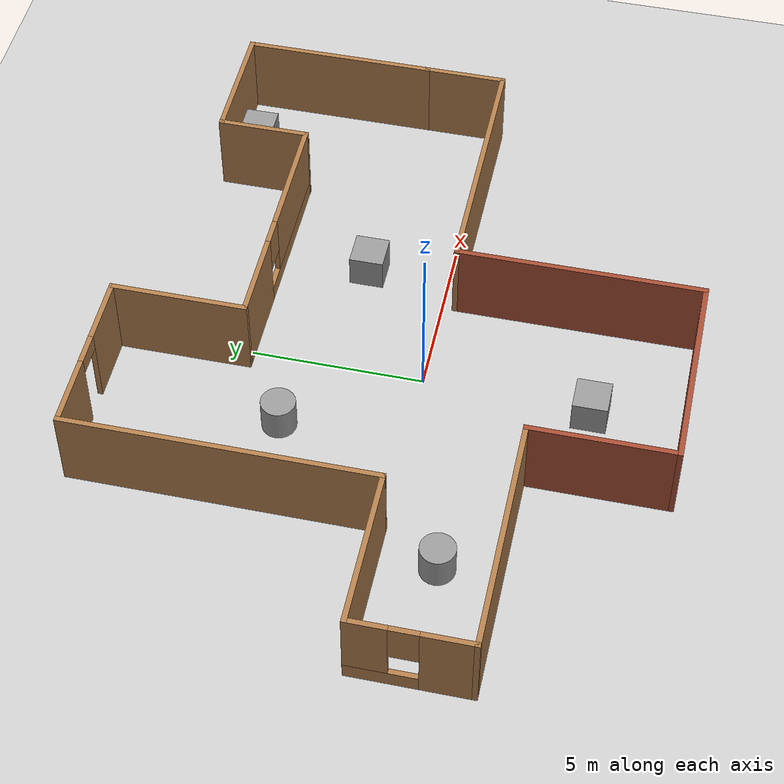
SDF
<sdf version="1.7">
 <world name="default">
  <light name="sun" type="directional">
   <pose>0 0 10 0 -0 0</pose>
   <diffuse>0.8 0.8 0.8 1</diffuse>
   <specular>0.2 0.2 0.2 1</specular>
   <attenuation>
    <range>1000</range>
    <constant>0.9</constant>
    <linear>0.01</linear>
    <quadratic>0.001</quadratic>
   </attenuation>
   <direction>-0.5 0.1 -0.9</direction>
   <spot><inner_angle>0</inner_angle><outer_angle>0</outer_angle><falloff>0</falloff></spot>
  </light>
  <model name="ground_plane">
   <static>1</static>
   <link name="link">
    <collision name="collision">
     <geometry><plane><normal>0 0 1</normal><size>100 100</size></plane></geometry>
     <surface><friction><ode><mu>100</mu><mu2>50</mu2></ode></friction></surface>
    </collision>
    <visual name="visual">
     <cast_shadows>0</cast_shadows>
     <geometry><plane><normal>0 0 1</normal><size>100 100</size></plane></geometry>
     <material>
      <script><uri>file://media/materials/scripts/gazebo.material</uri><name>Gazebo/Grey</name></script>
     </material>
    </visual>
   </link>
  </model>
  <gravity>0 0 -9.8</gravity>
  <magnetic_field>6e-06 2.3e-05 -4.2e-05</magnetic_field>
  <atmosphere type="adiabatic"/>
  <physics type="ode">
   <max_step_size>0.001</max_step_size>
   <real_time_factor>1</real_time_factor>
   <real_time_update_rate>1000</real_time_update_rate>
  </physics>
  <scene><ambient>0.4 0.4 0.4 1</ambient><background>0.7 0.7 0.7 1</background><shadows>1</shadows></scene>
  <audio><device>default</device></audio>
  <spherical_coordinates>
   <surface_model>EARTH_WGS84</surface_model>
   <latitude_deg>0</latitude_deg>
   <longitude_deg>0</longitude_deg>
   <elevation>0</elevation>
   <heading_deg>0</heading_deg>
  </spherical_coordinates>
  <model name="world">
   <pose>0.23497 0.698898 0 0 -0 0</pose>
   <link name="Wall_10">
    <collision name="Wall_10_Collision">
     <geometry><box><size>2.75 0.15 2.5</size></box></geometry>
     <pose>0 0 1.25 0 -0 0</pose>
    </collision>
    <visual name="Wall_10_Visual">
     <pose>0 0 1.25 0 -0 0</pose>
     <geometry><box><size>2.75 0.15 2.5</size></box></geometry>
     <material>
      <script><uri>file://media/materials/scripts/gazebo.material</uri><name>Gazebo/Wood</name></script>
      <ambient>1 1 1 1</ambient>
     </material>
     <meta><layer>0</layer></meta>
    </visual>
    <pose>6.425 5.6 0 0 -0 1.5708</pose>
   </link>
   <link name="Wall_11">
    <collision name="Wall_11_Collision">
     <geometry><box><size>3.75 0.15 2.5</size></box></geometry>
     <pose>0 0 1.25 0 -0 0</pose>
    </collision>
    <visual name="Wall_11_Visual">
     <pose>0 0 1.25 0 -0 0</pose>
     <geometry><box><size>3.75 0.15 2.5</size></box></geometry>
     <material>
      <script><uri>file://media/materials/scripts/gazebo.material</uri><name>Gazebo/Wood</name></script>
      <ambient>1 1 1 1</ambient>
     </material>
     <meta><layer>0</layer></meta>
    </visual>
    <pose>8.225 6.9 0 0 -0 0</pose>
   </link>
   <link name="Wall_12">
    <collision name="Wall_12_Collision">
     <geometry><box><size>5.75 0.15 2.5</size></box></geometry>
     <pose>0 0 1.25 0 -0 0</pose>
    </collision>
    <visual name="Wall_12_Visual">
     <pose>0 0 1.25 0 -0 0</pose>
     <geometry><box><size>5.75 0.15 2.5</size></box></geometry>
     <material>
      <script><uri>file://media/materials/scripts/gazebo.material</uri><name>Gazebo/Wood</name></script>
      <ambient>1 1 1 1</ambient>
     </material>
     <meta><layer>0</layer></meta>
    </visual>
    <pose>10.025 4.1 0 0 -0 -1.5708</pose>
   </link>
   <link name="Wall_13">
    <collision name="Wall_13_Collision">
     <geometry><box><size>2.5 0.15 2.5</size></box></geometry>
     <pose>0 0 1.25 0 -0 0</pose>
    </collision>
    <visual name="Wall_13_Visual">
     <pose>0 0 1.25 0 -0 0</pose>
     <geometry><box><size>2.5 0.15 2.5</size></box></geometry>
     <material>
      <script><uri>file://media/materials/scripts/gazebo.material</uri><name>Gazebo/Wood</name></script>
      <ambient>1 1 1 1</ambient>
     </material>
     <meta><layer>0</layer></meta>
    </visual>
    <pose>10.025 0.125 0 0 -0 -1.5708</pose>
   </link>
   <link name="Wall_14">
    <collision name="Wall_14_Collision">
     <geometry><box><size>7.5 0.15 2.5</size></box></geometry>
     <pose>0 0 1.25 0 -0 0</pose>
    </collision>
    <visual name="Wall_14_Visual">
     <pose>0 0 1.25 0 -0 0</pose>
     <geometry><box><size>7.5 0.15 2.5</size></box></geometry>
     <material>
      <script><uri>file://media/materials/scripts/gazebo.material</uri><name>Gazebo/Wood</name></script>
      <ambient>1 1 1 1</ambient>
     </material>
     <meta><layer>0</layer></meta>
    </visual>
    <pose>6.35 -1.05 0 0 -0 3.14159</pose>
   </link>
   <link name="Wall_15">
    <collision name="Wall_15_Collision">
     <geometry><box><size>7.25 0.15 2.5</size></box></geometry>
     <pose>0 0 1.25 0 -0 0</pose>
    </collision>
    <visual name="Wall_15_Visual">
     <pose>0 0 1.25 0 -0 0</pose>
     <geometry><box><size>7.25 0.15 2.5</size></box></geometry>
     <material>
      <script><uri>file://media/materials/scripts/gazebo.material</uri><name>Gazebo/Bricks</name></script>
      <ambient>1 1 1 1</ambient>
     </material>
     <meta><layer>0</layer></meta>
    </visual>
    <pose>2.675 -4.6 0 0 -0 -1.5708</pose>
   </link>
   <link name="Wall_16">
    <collision name="Wall_16_Collision">
     <geometry><box><size>6 0.15 2.5</size></box></geometry>
     <pose>0 0 1.25 0 -0 0</pose>
    </collision>
    <visual name="Wall_16_Visual">
     <pose>0 0 1.25 0 -0 0</pose>
     <geometry><box><size>6 0.15 2.5</size></box></geometry>
     <material>
      <script><uri>file://media/materials/scripts/gazebo.material</uri><name>Gazebo/Bricks</name></script>
      <ambient>1 1 1 1</ambient>
     </material>
     <meta><layer>0</layer></meta>
    </visual>
    <pose>-0.250001 -8.15 0 0 -0 3.14159</pose>
   </link>
   <link name="Wall_17">
    <collision name="Wall_17_Collision">
     <geometry><box><size>4.25 0.15 2.5</size></box></geometry>
     <pose>0 0 1.25 0 -0 0</pose>
    </collision>
    <visual name="Wall_17_Visual">
     <pose>0 0 1.25 0 -0 0</pose>
     <geometry><box><size>4.25 0.15 2.5</size></box></geometry>
     <material>
      <script><uri>file://media/materials/scripts/gazebo.material</uri><name>Gazebo/Bricks</name></script>
      <ambient>1 1 1 1</ambient>
     </material>
     <meta><layer>0</layer></meta>
    </visual>
    <pose>-3.175 -6.1 0 0 -0 1.5708</pose>
   </link>
   <link name="Wall_18">
    <collision name="Wall_18_Collision">
     <geometry><box><size>7 0.15 2.5</size></box></geometry>
     <pose>0 0 1.25 0 -0 0</pose>
    </collision>
    <visual name="Wall_18_Visual">
     <pose>0 0 1.25 0 -0 0</pose>
     <geometry><box><size>7 0.15 2.5</size></box></geometry>
     <material>
      <script><uri>file://media/materials/scripts/gazebo.material</uri><name>Gazebo/Wood</name></script>
      <ambient>1 1 1 1</ambient>
     </material>
     <meta><layer>0</layer></meta>
    </visual>
    <pose>-6.6 -4.05 0 0 -0 3.14159</pose>
   </link>
   <link name="Wall_19">
    <pose>-10.025 -2.375 0 0 -0 1.5708</pose>
    <visual name="Wall_19_Visual_0">
     <pose>-0.991171 0 1.25 0 -0 0</pose>
     <geometry><box><size>1.51766 0.15 2.5</size></box></geometry>
     <material>
      <script><uri>file://media/materials/scripts/gazebo.material</uri><name>Gazebo/Wood</name></script>
      <ambient>1 1 1 1</ambient>
     </material>
     <meta><layer>0</layer></meta>
    </visual>
    <collision name="Wall_19_Collision_0">
     <geometry><box><size>1.51766 0.15 2.5</size></box></geometry>
     <pose>-0.991171 0 1.25 0 -0 0</pose>
    </collision>
    <visual name="Wall_19_Visual_1">
     <pose>0.758829 0 0.25 0 -0 0</pose>
     <geometry><box><size>1.98234 0.15 0.5</size></box></geometry>
     <material>
      <script><uri>file://media/materials/scripts/gazebo.material</uri><name>Gazebo/Wood</name></script>
      <ambient>1 1 1 1</ambient>
     </material>
     <meta><layer>0</layer></meta>
    </visual>
    <collision name="Wall_19_Collision_1">
     <geometry><box><size>1.98234 0.15 0.5</size></box></geometry>
     <pose>0.758829 0 0.25 0 -0 0</pose>
    </collision>
    <visual name="Wall_19_Visual_2">
     <pose>1.15883 0 1.5 0 -0 0</pose>
     <geometry><box><size>1.18234 0.15 2</size></box></geometry>
     <material>
      <script><uri>file://media/materials/scripts/gazebo.material</uri><name>Gazebo/Wood</name></script>
      <ambient>1 1 1 1</ambient>
     </material>
     <meta><layer>0</layer></meta>
    </visual>
    <collision name="Wall_19_Collision_2">
     <geometry><box><size>1.18234 0.15 2</size></box></geometry>
     <pose>1.15883 0 1.5 0 -0 0</pose>
    </collision>
    <visual name="Wall_19_Visual_3">
     <pose>0.167659 0 1.9 0 -0 0</pose>
     <geometry><box><size>0.8 0.15 1.2</size></box></geometry>
     <material>
      <script><uri>file://media/materials/scripts/gazebo.material</uri><name>Gazebo/Wood</name></script>
      <ambient>1 1 1 1</ambient>
     </material>
     <meta><layer>0</layer></meta>
    </visual>
    <collision name="Wall_19_Collision_3">
     <geometry><box><size>0.8 0.15 1.2</size></box></geometry>
     <pose>0.167659 0 1.9 0 -0 0</pose>
    </collision>
   </link>
   <link name="Wall_20">
    <collision name="Wall_20_Collision">
     <geometry><box><size>4.65 0.15 2.5</size></box></geometry>
     <pose>0 0 1.25 0 -0 0</pose>
    </collision>
    <visual name="Wall_20_Visual">
     <pose>0 0 1.25 0 -0 0</pose>
     <geometry><box><size>4.65 0.15 2.5</size></box></geometry>
     <material>
      <script><uri>file://media/materials/scripts/gazebo.material</uri><name>Gazebo/Wood</name></script>
      <ambient>1 1 1 1</ambient>
     </material>
     <meta><layer>0</layer></meta>
    </visual>
    <pose>-7.775 -0.7 0 0 -0 0</pose>
   </link>
   <link name="Wall_6">
    <collision name="Wall_6_Collision">
     <geometry><box><size>9 0.15 2.5</size></box></geometry>
     <pose>0 0 1.25 0 -0 0</pose>
    </collision>
    <visual name="Wall_6_Visual">
     <pose>0 0 1.25 0 -0 0</pose>
     <geometry><box><size>9 0.15 2.5</size></box></geometry>
     <material>
      <script><uri>file://media/materials/scripts/gazebo.material</uri><name>Gazebo/Wood</name></script>
      <ambient>1 1 1 1</ambient>
     </material>
     <meta><layer>0</layer></meta>
    </visual>
    <pose>-5.525 3.725 0 0 -0 1.5708</pose>
   </link>
   <link name="Wall_7">
    <pose>-3.1 8.15 0 0 -0 0</pose>
    <visual name="Wall_7_Visual_0">
     <pose>-1.44697 0 1.25 0 -0 0</pose>
     <geometry><box><size>2.10606 0.15 2.5</size></box></geometry>
     <material>
      <script><uri>file://media/materials/scripts/gazebo.material</uri><name>Gazebo/Wood</name></script>
      <ambient>1 1 1 1</ambient>
     </material>
     <meta><layer>0</layer></meta>
    </visual>
    <collision name="Wall_7_Collision_0">
     <geometry><box><size>2.10606 0.15 2.5</size></box></geometry>
     <pose>-1.44697 0 1.25 0 -0 0</pose>
    </collision>
    <visual name="Wall_7_Visual_1">
     <pose>1.50303 0 1.25 0 -0 0</pose>
     <geometry><box><size>1.99394 0.15 2.5</size></box></geometry>
     <material>
      <script><uri>file://media/materials/scripts/gazebo.material</uri><name>Gazebo/Wood</name></script>
      <ambient>1 1 1 1</ambient>
     </material>
     <meta><layer>0</layer></meta>
    </visual>
    <collision name="Wall_7_Collision_1">
     <geometry><box><size>1.99394 0.15 2.5</size></box></geometry>
     <pose>1.50303 0 1.25 0 -0 0</pose>
    </collision>
    <visual name="Wall_7_Visual_2">
     <pose>0.056064 0 2.25 0 -0 0</pose>
     <geometry><box><size>0.9 0.15 0.5</size></box></geometry>
     <material>
      <script><uri>file://media/materials/scripts/gazebo.material</uri><name>Gazebo/Wood</name></script>
      <ambient>1 1 1 1</ambient>
     </material>
     <meta><layer>0</layer></meta>
    </visual>
    <collision name="Wall_7_Collision_2">
     <geometry><box><size>0.9 0.15 0.5</size></box></geometry>
     <pose>0.056064 0 2.25 0 -0 0</pose>
    </collision>
   </link>
   <link name="Wall_8">
    <collision name="Wall_8_Collision">
     <geometry><box><size>4 0.15 2.5</size></box></geometry>
     <pose>0 0 1.25 0 -0 0</pose>
    </collision>
    <visual name="Wall_8_Visual">
     <pose>0 0 1.25 0 -0 0</pose>
     <geometry><box><size>4 0.15 2.5</size></box></geometry>
     <material>
      <script><uri>file://media/materials/scripts/gazebo.material</uri><name>Gazebo/Wood</name></script>
      <ambient>1 1 1 1</ambient>
     </material>
     <meta><layer>0</layer></meta>
    </visual>
    <pose>-0.675001 6.225 0 0 -0 -1.5708</pose>
   </link>
   <link name="Wall_9">
    <pose>2.875 4.3 0 0 -0 0</pose>
    <visual name="Wall_9_Visual_0">
     <pose>-2.29684 0 1.25 0 -0 0</pose>
     <geometry><box><size>2.65632 0.15 2.5</size></box></geometry>
     <material>
      <script><uri>file://media/materials/scripts/gazebo.material</uri><name>Gazebo/Wood</name></script>
      <ambient>1 1 1 1</ambient>
     </material>
     <meta><layer>0</layer></meta>
    </visual>
    <collision name="Wall_9_Collision_0">
     <geometry><box><size>2.65632 0.15 2.5</size></box></geometry>
     <pose>-2.29684 0 1.25 0 -0 0</pose>
    </collision>
    <visual name="Wall_9_Visual_1">
     <pose>1.32816 0 0.25 0 -0 0</pose>
     <geometry><box><size>4.59368 0.15 0.5</size></box></geometry>
     <material>
      <script><uri>file://media/materials/scripts/gazebo.material</uri><name>Gazebo/Wood</name></script>
      <ambient>1 1 1 1</ambient>
     </material>
     <meta><layer>0</layer></meta>
    </visual>
    <collision name="Wall_9_Collision_1">
     <geometry><box><size>4.59368 0.15 0.5</size></box></geometry>
     <pose>1.32816 0 0.25 0 -0 0</pose>
    </collision>
    <visual name="Wall_9_Visual_2">
     <pose>1.72816 0 1.5 0 -0 0</pose>
     <geometry><box><size>3.79368 0.15 2</size></box></geometry>
     <material>
      <script><uri>file://media/materials/scripts/gazebo.material</uri><name>Gazebo/Wood</name></script>
      <ambient>1 1 1 1</ambient>
     </material>
     <meta><layer>0</layer></meta>
    </visual>
    <collision name="Wall_9_Collision_2">
     <geometry><box><size>3.79368 0.15 2</size></box></geometry>
     <pose>1.72816 0 1.5 0 -0 0</pose>
    </collision>
    <visual name="Wall_9_Visual_3">
     <pose>-0.568685 0 1.9 0 -0 0</pose>
     <geometry><box><size>0.8 0.15 1.2</size></box></geometry>
     <material>
      <script><uri>file://media/materials/scripts/gazebo.material</uri><name>Gazebo/Wood</name></script>
      <ambient>1 1 1 1</ambient>
     </material>
     <meta><layer>0</layer></meta>
    </visual>
    <collision name="Wall_9_Collision_3">
     <geometry><box><size>0.8 0.15 1.2</size></box></geometry>
     <pose>-0.568685 0 1.9 0 -0 0</pose>
    </collision>
   </link>
   <static>1</static>
  </model>
  <model name="unit_box">
   <pose>-0.252707 -4.83372 0.499995 0 1e-05 0</pose>
   <link name="link">
    <inertial>
     <mass>1</mass>
     <inertia>
      <ixx>0.166667</ixx>
      <ixy>0</ixy>
      <ixz>0</ixz>
      <iyy>0.166667</iyy>
      <iyz>0</iyz>
      <izz>0.166667</izz>
     </inertia>
    </inertial>
    <collision name="collision"><geometry><box><size>1 1 1</size></box></geometry></collision>
    <visual name="visual">
     <geometry><box><size>1 1 1</size></box></geometry>
     <material>
      <script><name>Gazebo/Grey</name><uri>file://media/materials/scripts/gazebo.material</uri></script>
     </material>
    </visual>
   </link>
  </model>
  <model name="unit_cylinder">
   <pose>-2.33935 3.6243 0.499993 -3e-06 -3e-06 0</pose>
   <link name="link">
    <inertial>
     <mass>1</mass>
     <inertia><ixx>0.145833</ixx><ixy>0</ixy><ixz>0</ixz><iyy>0.145833</iyy><iyz>0</iyz><izz>0.125</izz></inertia>
    </inertial>
    <collision name="collision">
     <geometry><cylinder><radius>0.5</radius><length>1</length></cylinder></geometry>
    </collision>
    <visual name="visual">
     <geometry><cylinder><radius>0.5</radius><length>1</length></cylinder></geometry>
     <material>
      <script><name>Gazebo/Grey</name><uri>file://media/materials/scripts/gazebo.material</uri></script>
     </material>
    </visual>
   </link>
  </model>
  <model name="unit_cylinder_0">
   <pose>-6.20164 -1.65667 0.499997 3e-06 4e-06 -0</pose>
   <link name="link">
    <inertial>
     <mass>1</mass>
     <inertia><ixx>0.145833</ixx><ixy>0</ixy><ixz>0</ixz><iyy>0.145833</iyy><iyz>0</iyz><izz>0.125</izz></inertia>
    </inertial>
    <collision name="collision">
     <geometry><cylinder><radius>0.5</radius><length>1</length></cylinder></geometry>
    </collision>
    <visual name="visual">
     <geometry><cylinder><radius>0.5</radius><length>1</length></cylinder></geometry>
     <material>
      <script><name>Gazebo/Grey</name><uri>file://media/materials/scripts/gazebo.material</uri></script>
     </material>
    </visual>
   </link>
  </model>
  <model name="unit_box_0">
   <pose>3.78631 2.40049 0.499995 -1e-05 -0 0</pose>
   <link name="link">
    <inertial>
     <mass>1</mass>
     <inertia>
      <ixx>0.166667</ixx>
      <ixy>0</ixy>
      <ixz>0</ixz>
      <iyy>0.166667</iyy>
      <iyz>0</iyz>
      <izz>0.166667</izz>
     </inertia>
    </inertial>
    <collision name="collision"><geometry><box><size>1 1 1</size></box></geometry></collision>
    <visual name="visual">
     <geometry><box><size>1 1 1</size></box></geometry>
     <material>
      <script><name>Gazebo/Grey</name><uri>file://media/materials/scripts/gazebo.material</uri></script>
     </material>
    </visual>
   </link>
  </model>
  <model name="unit_box_1">
   <pose>8.38284 6.97158 0.5 0 -0 0</pose>
   <link name="link">
    <inertial>
     <mass>1</mass>
     <inertia>
      <ixx>0.166667</ixx>
      <ixy>0</ixy>
      <ixz>0</ixz>
      <iyy>0.166667</iyy>
      <iyz>0</iyz>
      <izz>0.166667</izz>
     </inertia>
    </inertial>
    <collision name="collision"><geometry><box><size>1 1 1</size></box></geometry></collision>
    <visual name="visual">
     <geometry><box><size>1 1 1</size></box></geometry>
     <material>
      <script><name>Gazebo/Grey</name><uri>file://media/materials/scripts/gazebo.material</uri></script>
     </material>
    </visual>
   </link>
  </model>
 </world>
</sdf>
